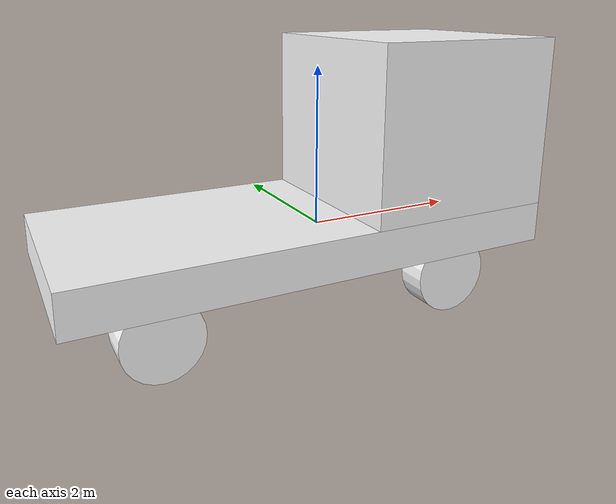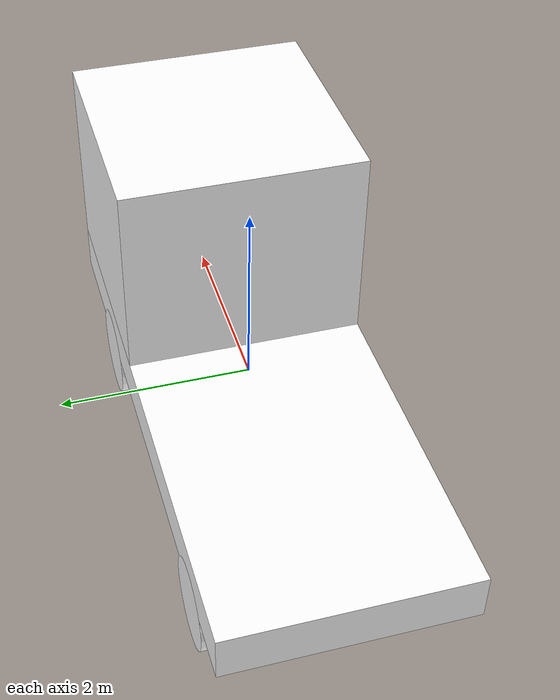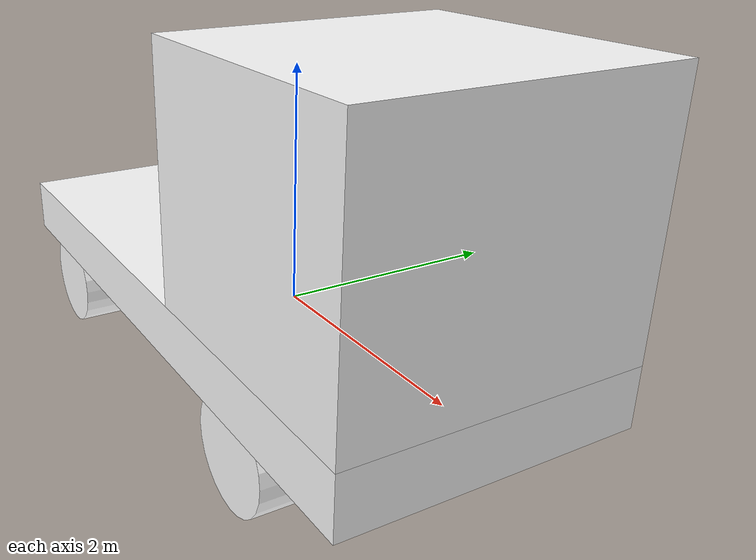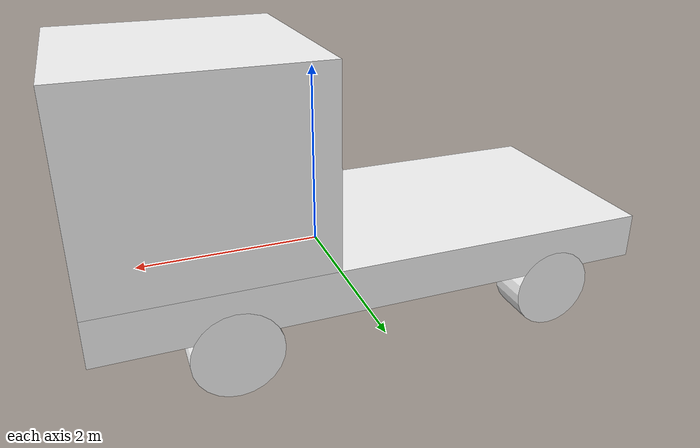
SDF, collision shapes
<?xml version='1.0'?>
<sdf version='1.6'>
<model name='daf_xf_450_tractor'>

  <link name='base_link'>
    <inertial>
      <pose>0 0 0 0 0 0</pose>
      <mass>15000</mass>
      <inertia>
        <ixx>8062.625</ixx>
        <ixy>0</ixy>
        <ixz>0</ixz>
        <iyy>44714.5</iyy>
        <iyz>0</iyz>
        <izz>52152.125</izz>
      </inertia>
    </inertial>
    <collision name='chassis_collision'>
      <pose>-0.41 0 0 0 0 0</pose>
      <geometry>
        <box>
          <size>5.96 2.49 0.5</size>
        </box>
      </geometry>
    </collision>
    <collision name='cab_collision'>
      <pose>1.35 0 1.295 0 0 0</pose>
      <geometry>
        <box>
          <size>2.44 2.49 2.09</size>
        </box>
      </geometry>
    </collision>
    <visual name='chassis_visual'>
      <pose>-0.41 0 0 0 0 0</pose>
      <geometry>
        <mesh>
          <uri>model://daf_xf_450_tractor/meshes/tractor_chassis.dae</uri>
        </mesh>
      </geometry>
      <material>
        <ambient>1 1 1</ambient>
        <diffuse>1 1 1</diffuse>
        <specular>0.1 0.1 0.1</specular>
        <pbr>
          <metal>
            <albedo_map>model://daf_xf_450_tractor/materials/textures/tractor_chassis.png</albedo_map>
            <metalness_map>model://daf_xf_450_tractor/materials/textures/silver_metal/silver_metal_metallic.jpg</metalness_map>
            <normal_map>model://daf_xf_450_tractor/materials/textures/silver_metal/silver_metal_normal.jpg</normal_map>
            <roughness_map>model://daf_xf_450_tractor/materials/textures/silver_metal/silver_metal_roughness.jpg</roughness_map>
            <roughness>0.2</roughness>
            <metalness>0.2</metalness>
          </metal>
        </pbr>
      </material>
    </visual>
  </link>

  <joint name='front_left_steer_joint' type='revolute'>
    <pose relative_to='base_link'>1.2 0.705 -0.4675 0 0 0</pose>
    <parent>base_link</parent>
    <child>front_left_steer_link</child>
    <axis>
      <xyz>0 0 1</xyz>
      <limit>
        <lower>-0.698131701</lower>
        <upper>0.698131701</upper>
      </limit>
      <dynamics>
        <damping>0.0001</damping>
      </dynamics>
    </axis>
  </joint>
  <link name='front_left_steer_link'>
    <pose relative_to='front_left_steer_joint'>0 0 0 0 0 0</pose>
    <inertial>
      <pose>0 0 0 0 0 0</pose>
      <mass>1</mass>
      <inertia>
        <ixx>0.001458333</ixx>
        <ixy>0</ixy>
        <ixz>0</ixz>
        <iyy>0.001458333</iyy>
        <iyz>0</iyz>
        <izz>0.00125</izz>
      </inertia>
    </inertial>
    <collision name='collision'>
      <pose>0 0 0 0 0 0</pose>
      <geometry>
        <cylinder>
          <radius>0.05</radius>
          <length>0.1</length>
        </cylinder>
      </geometry>
    </collision>
    <visual name='visual'>
      <pose>0 0 0 0 0 0</pose>
      <geometry>
        <cylinder>
          <radius>0.05</radius>
          <length>0.1</length>
        </cylinder>
      </geometry>
      <material>
        <ambient>0 0 1</ambient>
        <diffuse>0 0 1</diffuse>
        <specular>0.1 0.1 0.1 1</specular>
      </material>
    </visual>
  </link>

  <joint name='front_left_wheel_joint' type='revolute'>
    <pose relative_to='front_left_steer_link'>0 0.36 0 -1.5708 0 0</pose>
    <parent>front_left_steer_link</parent>
    <child>front_left_wheel_link</child>
    <axis>
      <xyz>0 0 1</xyz>
      <limit>
        <lower>-1e+16</lower>
        <upper>1e+16</upper>
      </limit>
      <dynamics>
        <damping>0.0001</damping>
      </dynamics>
    </axis>
  </joint>
  <link name='front_left_wheel_link'>
    <pose relative_to='front_left_wheel_joint'>0 0 0 0 0 0</pose>
    <inertial>
      <pose>0 0 0 0 0 0</pose>
      <mass>40</mass>
      <inertia>
        <ixx>2.6645625</ixx>
        <ixy>0</ixy>
        <ixz>0</ixz>
        <iyy>2.6645625</iyy>
        <iyz>0</iyz>
        <izz>4.465125</izz>
      </inertia>
    </inertial>
    <collision name='collision'>
      <pose>0 0 0 0 0 0</pose>
      <geometry>
        <cylinder>
          <radius>0.4725</radius>
          <length>0.36</length>
        </cylinder>
      </geometry>
      <surface>
        <friction>
          <ode>
            <mu>1.0</mu>
            <mu2>1.0</mu2>
            <fdir1>1 0 0</fdir1>
            <slip1>0.0</slip1>
            <slip2>0.0</slip2>
          </ode>
        </friction>
      </surface>
    </collision>
    <visual name='tyre_visual'>
      <pose>0 0 0 0 0 0</pose>
      <geometry>
        <mesh>
          <uri>model://daf_xf_450_tractor/meshes/tractor_wheel_tyre_front.dae</uri>
        </mesh>
      </geometry>
      <material>
        <ambient>1 1 1</ambient>
        <diffuse>1 1 1</diffuse>
        <specular>1 1 1</specular>
        <pbr>
          <metal>
            <albedo_map>model://daf_xf_450_tractor/materials/textures/rubber_01/rubber_01_diffuse.jpg</albedo_map>
            <normal_map>model://daf_xf_450_tractor/materials/textures/rubber_01/rubber_01_normal.jpg</normal_map>
            <roughness_map>model://daf_xf_450_tractor/materials/textures/rubber_01/rubber_01_roughness.jpg</roughness_map>
            <roughness>1.0</roughness>
            <metalness>0.0</metalness>
          </metal>
        </pbr>
      </material>
    </visual>
    <visual name='hub_visual'>
      <pose>0 0 0 0 0 0</pose>
      <geometry>
        <mesh>
          <uri>model://daf_xf_450_tractor/meshes/tractor_wheel_hub_front.dae</uri>
        </mesh>
      </geometry>
        <material>
          <ambient>1 1 1</ambient>
          <diffuse>1 1 1</diffuse>
          <specular>1 1 1</specular>
          <pbr>
            <metal>
              <albedo_map>model://daf_xf_450_tractor/materials/textures/silver_metal/silver_metal_diffuse.jpg</albedo_map>
              <metalness_map>model://daf_xf_450_tractor/materials/textures/silver_metal/silver_metal_metallic.jpg</metalness_map>
              <normal_map>model://daf_xf_450_tractor/materials/textures/silver_metal/silver_metal_normal.jpg</normal_map>
              <roughness_map>model://daf_xf_450_tractor/materials/textures/silver_metal/silver_metal_roughness.jpg</roughness_map>
              <roughness>0.5</roughness>
              <metalness>1.0</metalness>
            </metal>
          </pbr>
        </material>
    </visual>
  </link>

  <joint name='front_right_steer_joint' type='revolute'>
    <pose relative_to='base_link'>1.2 -0.705 -0.4675 0 0 0</pose>
    <parent>base_link</parent>
    <child>front_right_steer_link</child>
    <axis>
      <xyz>0 0 1</xyz>
      <limit>
        <lower>-0.698131701</lower>
        <upper>0.698131701</upper>
      </limit>
      <dynamics>
        <damping>0.0001</damping>
      </dynamics>
    </axis>
  </joint>
  <link name='front_right_steer_link'>
    <pose relative_to='front_right_steer_joint'>0 0 0 0 0 0</pose>
    <inertial>
      <pose>0 0 0 0 0 0</pose>
      <mass>1</mass>
      <inertia>
        <ixx>0.001458333</ixx>
        <ixy>0</ixy>
        <ixz>0</ixz>
        <iyy>0.001458333</iyy>
        <iyz>0</iyz>
        <izz>0.00125</izz>
      </inertia>
    </inertial>
    <collision name='collision'>
      <pose>0 0 0 0 0 0</pose>
      <geometry>
        <cylinder>
          <radius>0.05</radius>
          <length>0.1</length>
        </cylinder>
      </geometry>
    </collision>
    <visual name='visual'>
      <pose>0 0 0 0 0 0</pose>
      <geometry>
        <cylinder>
          <radius>0.05</radius>
          <length>0.1</length>
        </cylinder>
      </geometry>
      <material>
        <ambient>0 0 1</ambient>
        <diffuse>0 0 1</diffuse>
        <specular>0.1 0.1 0.1 1</specular>
      </material>
    </visual>
  </link>

  <joint name='front_right_wheel_joint' type='revolute'>
    <pose relative_to='front_right_steer_link'>0 -0.36 0 -1.5708 0 0</pose>
    <parent>front_right_steer_link</parent>
    <child>front_right_wheel_link</child>
    <axis>
      <xyz>0 0 1</xyz>
      <limit>
        <lower>-1e+16</lower>
        <upper>1e+16</upper>
      </limit>
      <dynamics>
        <damping>0.0001</damping>
      </dynamics>
    </axis>
  </joint>
  <link name='front_right_wheel_link'>
    <pose relative_to='front_right_wheel_joint'>0 0 0 0 0 0</pose>
    <inertial>
      <pose>0 0 0 0 0 0</pose>
      <mass>40</mass>
      <inertia>
        <ixx>2.6645625</ixx>
        <ixy>0</ixy>
        <ixz>0</ixz>
        <iyy>2.6645625</iyy>
        <iyz>0</iyz>
        <izz>4.465125</izz>
      </inertia>
    </inertial>
    <collision name='collision'>
      <pose>0 0 0 0 0 0</pose>
      <geometry>
        <cylinder>
          <radius>0.4725</radius>
          <length>0.36</length>
        </cylinder>
      </geometry>
      <surface>
        <friction>
          <ode>
            <mu>1.0</mu>
            <mu2>1.0</mu2>
            <fdir1>1 0 0</fdir1>
            <slip1>0.0</slip1>
            <slip2>0.0</slip2>
          </ode>
        </friction>
      </surface>
    </collision>
    <visual name='tyre_visual'>
      <pose>0 0 0 3.14159265 0 0</pose>
      <geometry>
        <mesh>
          <uri>model://daf_xf_450_tractor/meshes/tractor_wheel_tyre_front.dae</uri>
        </mesh>
      </geometry>
      <material>
        <ambient>1 1 1</ambient>
        <diffuse>1 1 1</diffuse>
        <specular>1 1 1</specular>
        <pbr>
          <metal>
            <albedo_map>model://daf_xf_450_tractor/materials/textures/rubber_01/rubber_01_diffuse.jpg</albedo_map>
            <normal_map>model://daf_xf_450_tractor/materials/textures/rubber_01/rubber_01_normal.jpg</normal_map>
            <roughness_map>model://daf_xf_450_tractor/materials/textures/rubber_01/rubber_01_roughness.jpg</roughness_map>
            <roughness>1.0</roughness>
            <metalness>0.0</metalness>
          </metal>
        </pbr>
      </material>
    </visual>
    <visual name='hub_visual'>
      <pose>0 0 0 3.14159265 0 0</pose>
      <geometry>
        <mesh>
          <uri>model://daf_xf_450_tractor/meshes/tractor_wheel_hub_front.dae</uri>
        </mesh>
      </geometry>
        <material>
          <ambient>1 1 1</ambient>
          <diffuse>1 1 1</diffuse>
          <specular>1 1 1</specular>
          <pbr>
            <metal>
              <albedo_map>model://daf_xf_450_tractor/materials/textures/silver_metal/silver_metal_diffuse.jpg</albedo_map>
              <metalness_map>model://daf_xf_450_tractor/materials/textures/silver_metal/silver_metal_metallic.jpg</metalness_map>
              <normal_map>model://daf_xf_450_tractor/materials/textures/silver_metal/silver_metal_normal.jpg</normal_map>
              <roughness_map>model://daf_xf_450_tractor/materials/textures/silver_metal/silver_metal_roughness.jpg</roughness_map>
              <roughness>0.5</roughness>
              <metalness>1.0</metalness>
            </metal>
          </pbr>
        </material>
    </visual>
  </link>

  <joint name='rear_left_wheel_joint' type='revolute'>
    <pose relative_to='base_link'>-2.4 1.02 -0.49 -1.5708 0 0</pose>
    <parent>base_link</parent>
    <child>rear_left_wheel_link</child>
    <axis>
      <xyz>0 0 1</xyz>
      <limit>
        <lower>-1e+16</lower>
        <upper>1e+16</upper>
      </limit>
      <dynamics>
        <damping>0.0001</damping>
      </dynamics>
    </axis>
  </joint>
  <link name='rear_left_wheel_link'>
    <pose relative_to='rear_left_wheel_joint'>0 0 0 0 0 0</pose>
    <inertial>
      <pose>0 0 0 0 0 0</pose>
      <mass>40</mass>
      <inertia>
        <ixx>2.7</ixx>
        <ixy>0</ixy>
        <ixz>0</ixz>
        <iyy>2.7</iyy>
        <iyz>0</iyz>
        <izz>4.05</izz>
      </inertia>
    </inertial>
    <collision name='collision'>
      <pose>0 0 0 0 0 0</pose>
      <geometry>
        <cylinder>
          <radius>0.45</radius>
          <length>0.45</length>
        </cylinder>
      </geometry>
      <surface>
        <friction>
          <ode>
            <mu>1.0</mu>
            <mu2>1.0</mu2>
            <fdir1>1 0 0</fdir1>
            <slip1>0.0</slip1>
            <slip2>0.0</slip2>
          </ode>
        </friction>
      </surface>
    </collision>
    <visual name='tyre_visual'>
      <pose>0 0 0 0 0 0</pose>
      <geometry>
        <mesh>
          <uri>model://daf_xf_450_tractor/meshes/tractor_wheel_tyre_rear.dae</uri>
        </mesh>
      </geometry>
      <material>
        <ambient>1 1 1</ambient>
        <diffuse>1 1 1</diffuse>
        <specular>1 1 1</specular>
        <pbr>
          <metal>
            <albedo_map>model://daf_xf_450_tractor/materials/textures/rubber_01/rubber_01_diffuse.jpg</albedo_map>
            <normal_map>model://daf_xf_450_tractor/materials/textures/rubber_01/rubber_01_normal.jpg</normal_map>
            <roughness_map>model://daf_xf_450_tractor/materials/textures/rubber_01/rubber_01_roughness.jpg</roughness_map>
            <roughness>1.0</roughness>
            <metalness>0.0</metalness>
          </metal>
        </pbr>
      </material>
    </visual>
    <visual name='hub_visual'>
      <pose>0 0 0 0 0 0</pose>
      <geometry>
        <mesh>
          <uri>model://daf_xf_450_tractor/meshes/tractor_wheel_hub_rear.dae</uri>
        </mesh>
      </geometry>
        <material>
          <ambient>1 1 1</ambient>
          <diffuse>1 1 1</diffuse>
          <specular>1 1 1</specular>
          <pbr>
            <metal>
              <albedo_map>model://daf_xf_450_tractor/materials/textures/silver_metal/silver_metal_diffuse.jpg</albedo_map>
              <metalness_map>model://daf_xf_450_tractor/materials/textures/silver_metal/silver_metal_metallic.jpg</metalness_map>
              <normal_map>model://daf_xf_450_tractor/materials/textures/silver_metal/silver_metal_normal.jpg</normal_map>
              <roughness_map>model://daf_xf_450_tractor/materials/textures/silver_metal/silver_metal_roughness.jpg</roughness_map>
              <roughness>0.5</roughness>
              <metalness>1.0</metalness>
            </metal>
          </pbr>
        </material>
    </visual>
  </link>

  <joint name='rear_right_wheel_joint' type='revolute'>
    <pose relative_to='base_link'>-2.4 -1.02 -0.49 -1.5708 0 0</pose>
    <parent>base_link</parent>
    <child>rear_right_wheel_link</child>
    <axis>
      <xyz>0 0 1</xyz>
      <limit>
        <lower>-1e+16</lower>
        <upper>1e+16</upper>
      </limit>
      <dynamics>
        <damping>0.0001</damping>
      </dynamics>
    </axis>
  </joint>
  <link name='rear_right_wheel_link'>
    <pose relative_to='rear_right_wheel_joint'>0 0 0 0 0 0</pose>
    <inertial>
      <pose>0 0 0 0 0 0</pose>
      <mass>40</mass>
      <inertia>
        <ixx>2.7</ixx>
        <ixy>0</ixy>
        <ixz>0</ixz>
        <iyy>2.7</iyy>
        <iyz>0</iyz>
        <izz>4.05</izz>
      </inertia>
    </inertial>
    <collision name='collision'>
      <pose>0 0 0 0 0 0</pose>
      <geometry>
        <cylinder>
          <radius>0.45</radius>
          <length>0.45</length>
        </cylinder>
      </geometry>
      <surface>
        <friction>
          <ode>
            <mu>1.0</mu>
            <mu2>1.0</mu2>
            <fdir1>1 0 0</fdir1>
            <slip1>0.0</slip1>
            <slip2>0.0</slip2>
          </ode>
        </friction>
      </surface>
    </collision>
    <visual name='tyre_visual'>
      <pose>0 0 0 3.14159265 0 0</pose>
      <geometry>
        <mesh>
          <uri>model://daf_xf_450_tractor/meshes/tractor_wheel_tyre_rear.dae</uri>
        </mesh>
      </geometry>
      <material>
        <ambient>1 1 1</ambient>
        <diffuse>1 1 1</diffuse>
        <specular>1 1 1</specular>
        <pbr>
          <metal>
            <albedo_map>model://daf_xf_450_tractor/materials/textures/rubber_01/rubber_01_diffuse.jpg</albedo_map>
            <normal_map>model://daf_xf_450_tractor/materials/textures/rubber_01/rubber_01_normal.jpg</normal_map>
            <roughness_map>model://daf_xf_450_tractor/materials/textures/rubber_01/rubber_01_roughness.jpg</roughness_map>
            <roughness>1.0</roughness>
            <metalness>0.0</metalness>
          </metal>
        </pbr>
      </material>
    </visual>
    <visual name='hub_visual'>
      <pose>0 0 0 3.14159265 0 0</pose>
      <geometry>
        <mesh>
          <uri>model://daf_xf_450_tractor/meshes/tractor_wheel_hub_rear.dae</uri>
        </mesh>
      </geometry>
        <material>
          <ambient>1 1 1</ambient>
          <diffuse>1 1 1</diffuse>
          <specular>1 1 1</specular>
          <pbr>
            <metal>
              <albedo_map>model://daf_xf_450_tractor/materials/textures/silver_metal/silver_metal_diffuse.jpg</albedo_map>
              <metalness_map>model://daf_xf_450_tractor/materials/textures/silver_metal/silver_metal_metallic.jpg</metalness_map>
              <normal_map>model://daf_xf_450_tractor/materials/textures/silver_metal/silver_metal_normal.jpg</normal_map>
              <roughness_map>model://daf_xf_450_tractor/materials/textures/silver_metal/silver_metal_roughness.jpg</roughness_map>
              <roughness>0.5</roughness>
              <metalness>1.0</metalness>
            </metal>
          </pbr>
        </material>
    </visual>
  </link>

  <!-- Sensors -->
  <link name='imu_link'>
    <inertial>
      <mass>0.01</mass>
      <inertia>
        <ixx>1.66667E-07</ixx>
        <ixy>0</ixy>
        <ixz>0</ixz>
        <iyy>1.66667E-07</iyy>
        <iyz>0</iyz>
        <izz>1.66667E-07</izz>
      </inertia>
    </inertial>
    <sensor name="imu_sensor" type="imu">
      <pose>0 0 0 3.141593 0 0</pose>
      <always_on>1</always_on>
      <update_rate>1000.0</update_rate>
    </sensor>
  </link>
  <joint name='imu_joint' type='revolute'>
    <child>imu_link</child>
    <parent>base_link</parent>
    <axis>
      <xyz>0 0 1</xyz>
      <limit>
        <lower>0</lower>
        <upper>0</upper>
      </limit>
      <dynamics>
        <damping>0.0001</damping>
      </dynamics>
      <use_parent_model_frame>1</use_parent_model_frame>
    </axis>
  </joint>

  <!-- Plugins -->
  <plugin name="ignition::gazebo::systems::JointStatePublisher"
      filename="libignition-gazebo-joint-state-publisher-system.so">
  </plugin>
  <plugin name="ignition::gazebo::systems::ApplyJointForce"
      filename="libignition-gazebo-apply-joint-force-system.so">
      <joint_name>rear_left_wheel_joint</joint_name>
  </plugin>
  <plugin name="ignition::gazebo::systems::ApplyJointForce"
      filename="libignition-gazebo-apply-joint-force-system.so">
      <joint_name>rear_right_wheel_joint</joint_name>
  </plugin>
  <plugin name="ignition::gazebo::systems::ApplyJointForce"
      filename="libignition-gazebo-apply-joint-force-system.so">
      <joint_name>front_left_steer_joint</joint_name>
  </plugin>
  <plugin name="ignition::gazebo::systems::ApplyJointForce"
      filename="libignition-gazebo-apply-joint-force-system.so">
      <joint_name>front_right_steer_joint</joint_name>
  </plugin>

  <plugin name="ArduPilotPlugin"
      filename="libArduPilotPlugin.so">
    <!-- Port settings -->
    <fdm_addr>127.0.0.1</fdm_addr>
    <fdm_port_in>9002</fdm_port_in>
    <connectionTimeoutMaxCount>5</connectionTimeoutMaxCount>
    <modelXYZToAirplaneXForwardZDown>0 0 0 3.141593 0 0</modelXYZToAirplaneXForwardZDown>
    <gazeboXYZToNED>0 0 0 3.141593 0 0</gazeboXYZToNED>

    <!-- Sensors -->
    <imuName>imu_sensor</imuName>

    <!-- Control / channels -->

    <!--
        SERVO1_FUNCTION 94 (Script 1)
    -->
    <control channel="0">
      <jointName>rear_left_wheel_joint</jointName>
      <useForce>1</useForce>
      <multiplier>100.0</multiplier>
      <offset>-0.5</offset>
      <servo_min>1000</servo_min>
      <servo_max>2000</servo_max>
      <type>VELOCITY</type>
      <p_gain>1000</p_gain>
      <i_gain>0</i_gain>
      <d_gain>0</d_gain>
      <i_max>1</i_max>
      <i_min>-1</i_min>
      <cmd_max>100000.0</cmd_max>
      <cmd_min>-100000.0</cmd_min>
    </control>

    <!--
        SERVO2_FUNCTION 95 (Script 2)
    -->
    <control channel="1">
      <jointName>rear_right_wheel_joint</jointName>
      <useForce>1</useForce>
      <multiplier>100.0</multiplier>
      <offset>-0.5</offset>
      <servo_min>1000</servo_min>
      <servo_max>2000</servo_max>
      <type>VELOCITY</type>
      <p_gain>1000</p_gain>
      <i_gain>0</i_gain>
      <d_gain>0</d_gain>
      <i_max>1</i_max>
      <i_min>-1</i_min>
      <cmd_max>100000.0</cmd_max>
      <cmd_min>-100000.0</cmd_min>
    </control>

    <!--
        SERVO3_FUNCTION 96 (Script 3)
    -->
    <control channel="2">
      <jointName>front_left_steer_joint</jointName>
      <useForce>1</useForce>
      <multiplier>1.396263402</multiplier>
      <offset>-0.5</offset>
      <servo_min>1000</servo_min>
      <servo_max>2000</servo_max>
      <type>POSITION</type>
      <p_gain>10000.0</p_gain>
      <i_gain>0</i_gain>
      <d_gain>2000</d_gain>
      <i_max>-1</i_max>
      <i_min>0</i_min>
      <cmd_max>10000.0</cmd_max>
      <cmd_min>-10000.0</cmd_min>
    </control>

    <!--
        SERVO4_FUNCTION 97 (Script 4)
    -->
    <control channel="3">
      <jointName>front_right_steer_joint</jointName>
      <useForce>1</useForce>
      <multiplier>1.396263402</multiplier>
      <offset>-0.5</offset>
      <servo_min>1000</servo_min>
      <servo_max>2000</servo_max>
      <type>POSITION</type>
      <p_gain>10000.0</p_gain>
      <i_gain>0</i_gain>
      <d_gain>2000</d_gain>
      <i_max>-1</i_max>
      <i_min>0</i_min>
      <cmd_max>10000.0</cmd_max>
      <cmd_min>-10000.0</cmd_min>
    </control>
  </plugin>

</model>
</sdf>
